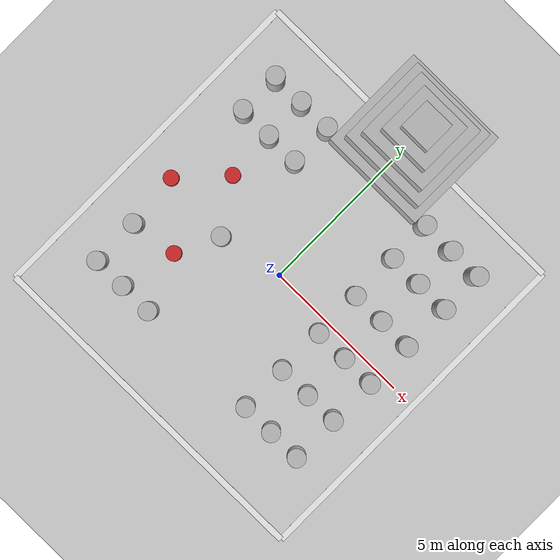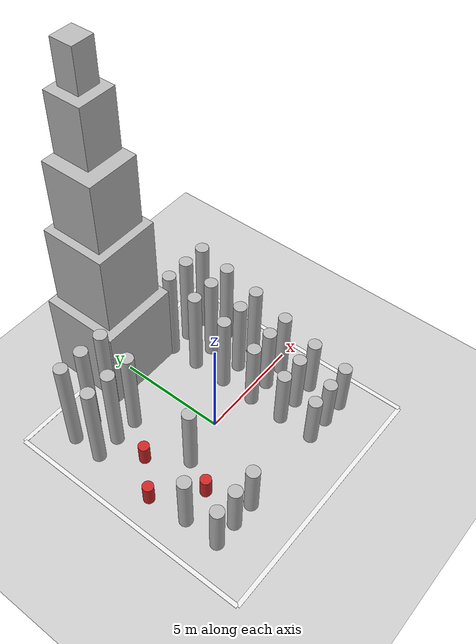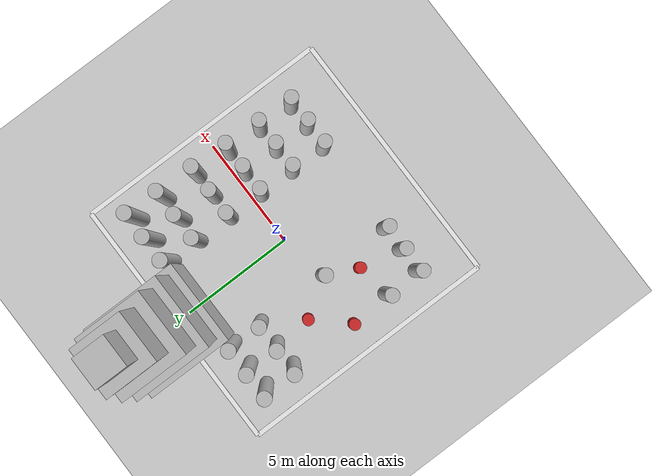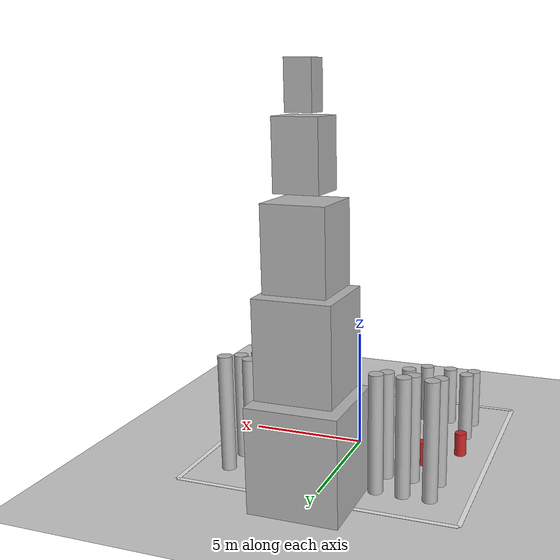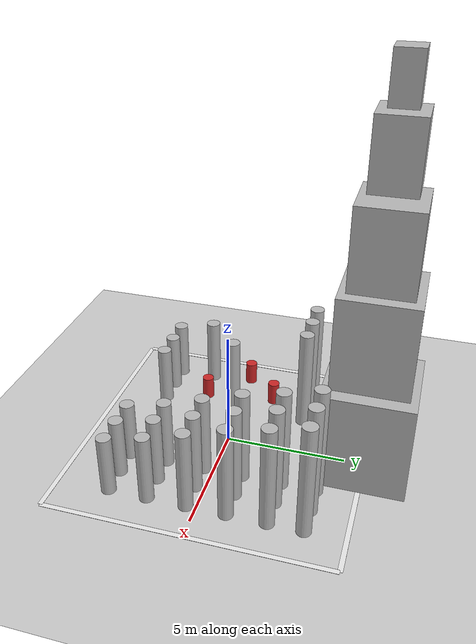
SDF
<?xml version="1.0"?>
<!-- Tour Hassan Rabat — hassan PNG textures (video / screenshot) -->
<sdf version="1.6">
  <world name="hassan_rabat">

  <physics type="ode">
    <max_step_size>0.01</max_step_size>
    <real_time_factor>1</real_time_factor>
    <real_time_update_rate>100</real_time_update_rate>
    <ode>
      <solver><type>quick</type><iters>50</iters><sor>1.3</sor></solver>
      <constraints><cfm>0</cfm><erp>0.2</erp>
        <contact_max_correcting_vel>100</contact_max_correcting_vel>
        <contact_surface_layer>0.001</contact_surface_layer>
      </constraints>
    </ode>
  </physics>

  <scene>
    <ambient>0.85 0.85 0.82 1</ambient>
    <background>0.42 0.62 0.95 1</background>
    <shadows>false</shadows><grid>false</grid>
  </scene>
  <light type="directional" name="sun_warm">
    <cast_shadows>false</cast_shadows>
    <diffuse>1.0 0.95 0.85 1</diffuse>
    <direction>-0.35 0.15 -0.92</direction>
  </light>
  <light type="directional" name="sky_fill">
    <cast_shadows>false</cast_shadows>
    <diffuse>0.25 0.35 0.55 1</diffuse>
    <direction>0.1 -0.05 -1.0</direction>
  </light>

  <model name="hassan_floor"><static>true</static><pose>0 0 0 0 0 0</pose><link name="link"><collision name="c"><geometry><plane><normal>0 0 1</normal><size>22 22</size></plane></geometry><surface><friction><ode><mu>0.65</mu><mu2>0.65</mu2></ode></friction></surface></collision><visual name="v"><geometry><plane><normal>0 0 1</normal><size>22 22</size></plane></geometry>
          <material><script><uri>file:///home/anon/ros2_ws/src/safe_drl_nav/safe_drl_nav/sim_assets/materials/scripts</uri><name>Hassan/Floor</name></script></material>
</visual></link></model>

  <model name="bound_n"><static>true</static><pose>0 5.8 0.01 0 0 0</pose><link name="link"><collision name="c"><geometry><box><size>11.6 0.2 0.2</size></box></geometry></collision><visual name="v"><geometry><box><size>11.6 0.2 0.01</size></box></geometry>
          <material><script><uri>file://media/materials/scripts/gazebo.material</uri><name>Gazebo/White</name></script></material>
</visual></link></model>

  <model name="bound_s"><static>true</static><pose>0 -5.8 0.01 0 0 0</pose><link name="link"><collision name="c"><geometry><box><size>11.6 0.2 0.2</size></box></geometry></collision><visual name="v"><geometry><box><size>11.6 0.2 0.01</size></box></geometry>
          <material><script><uri>file://media/materials/scripts/gazebo.material</uri><name>Gazebo/White</name></script></material>
</visual></link></model>

  <model name="bound_e"><static>true</static><pose>5.8 0 0.01 0 0 0</pose><link name="link"><collision name="c"><geometry><box><size>0.2 11.6 0.2</size></box></geometry></collision><visual name="v"><geometry><box><size>0.2 11.6 0.01</size></box></geometry>
          <material><script><uri>file://media/materials/scripts/gazebo.material</uri><name>Gazebo/White</name></script></material>
</visual></link></model>

  <model name="bound_w"><static>true</static><pose>-5.8 0 0.01 0 0 0</pose><link name="link"><collision name="c"><geometry><box><size>0.2 11.6 0.2</size></box></geometry></collision><visual name="v"><geometry><box><size>0.2 11.6 0.01</size></box></geometry>
          <material><script><uri>file://media/materials/scripts/gazebo.material</uri><name>Gazebo/White</name></script></material>
</visual></link></model>

  <model name="hassan_mosque"><static>true</static><pose>0 5.8 0 0 0 0</pose><link name="link"><collision name="c"><pose>0 0 8.0 0 0 0</pose><geometry><box><size>3.6 3.6 16</size></box></geometry></collision>
        <visual name="tier_0"><pose>0 0 2.2 0 0 0</pose><geometry><box><size>3.6 3.6 4.2</size></box></geometry>
          <material><script><uri>file:///home/anon/ros2_ws/src/safe_drl_nav/safe_drl_nav/sim_assets/materials/scripts</uri><name>Hassan/Tower</name></script></material>
</visual>
        <visual name="tier_1"><pose>0 0 6.4 0 0 0</pose><geometry><box><size>3.0 3.0 3.8</size></box></geometry>
          <material><script><uri>file:///home/anon/ros2_ws/src/safe_drl_nav/safe_drl_nav/sim_assets/materials/scripts</uri><name>Hassan/Tower</name></script></material>
</visual>
        <visual name="tier_2"><pose>0 0 10.0 0 0 0</pose><geometry><box><size>2.4 2.4 3.2</size></box></geometry>
          <material><script><uri>file:///home/anon/ros2_ws/src/safe_drl_nav/safe_drl_nav/sim_assets/materials/scripts</uri><name>Hassan/Tower</name></script></material>
</visual>
        <visual name="tier_3"><pose>0 0 13.2 0 0 0</pose><geometry><box><size>1.7 1.7 2.6</size></box></geometry>
          <material><script><uri>file:///home/anon/ros2_ws/src/safe_drl_nav/safe_drl_nav/sim_assets/materials/scripts</uri><name>Hassan/Tower</name></script></material>
</visual>
        <visual name="tier_4"><pose>0 0 15.5 0 0 0</pose><geometry><box><size>1.0 1.0 1.8</size></box></geometry>
          <material><script><uri>file:///home/anon/ros2_ws/src/safe_drl_nav/safe_drl_nav/sim_assets/materials/scripts</uri><name>Hassan/Tower</name></script></material>
</visual>
</link></model>

  <model name="p_0"><static>true</static><pose>-4.3 -3.6 1.3 0 0 0</pose><link name="link"><collision name="c"><geometry><cylinder><radius>0.3</radius><length>2.6</length></cylinder></geometry></collision><visual name="v"><geometry><cylinder><radius>0.3</radius><length>2.6</length></cylinder></geometry>
          <material><script><uri>file:///home/anon/ros2_ws/src/safe_drl_nav/safe_drl_nav/sim_assets/materials/scripts</uri><name>Hassan/Pillar</name></script></material>
</visual></link></model>

  <model name="p_1"><static>true</static><pose>-3.2 -3.6 1.3 0 0 0</pose><link name="link"><collision name="c"><geometry><cylinder><radius>0.3</radius><length>2.6</length></cylinder></geometry></collision><visual name="v"><geometry><cylinder><radius>0.3</radius><length>2.6</length></cylinder></geometry>
          <material><script><uri>file:///home/anon/ros2_ws/src/safe_drl_nav/safe_drl_nav/sim_assets/materials/scripts</uri><name>Hassan/Pillar</name></script></material>
</visual></link></model>

  <model name="p_2"><static>true</static><pose>-2.1 -3.6 1.3 0 0 0</pose><link name="link"><collision name="c"><geometry><cylinder><radius>0.3</radius><length>2.6</length></cylinder></geometry></collision><visual name="v"><geometry><cylinder><radius>0.3</radius><length>2.6</length></cylinder></geometry>
          <material><script><uri>file:///home/anon/ros2_ws/src/safe_drl_nav/safe_drl_nav/sim_assets/materials/scripts</uri><name>Hassan/Pillar</name></script></material>
</visual></link></model>

  <model name="p_3"><static>true</static><pose>2.1 -3.6 1.3 0 0 0</pose><link name="link"><collision name="c"><geometry><cylinder><radius>0.3</radius><length>2.6</length></cylinder></geometry></collision><visual name="v"><geometry><cylinder><radius>0.3</radius><length>2.6</length></cylinder></geometry>
          <material><script><uri>file:///home/anon/ros2_ws/src/safe_drl_nav/safe_drl_nav/sim_assets/materials/scripts</uri><name>Hassan/Pillar</name></script></material>
</visual></link></model>

  <model name="p_4"><static>true</static><pose>3.2 -3.6 1.3 0 0 0</pose><link name="link"><collision name="c"><geometry><cylinder><radius>0.3</radius><length>2.6</length></cylinder></geometry></collision><visual name="v"><geometry><cylinder><radius>0.3</radius><length>2.6</length></cylinder></geometry>
          <material><script><uri>file:///home/anon/ros2_ws/src/safe_drl_nav/safe_drl_nav/sim_assets/materials/scripts</uri><name>Hassan/Pillar</name></script></material>
</visual></link></model>

  <model name="p_5"><static>true</static><pose>4.3 -3.6 1.3 0 0 0</pose><link name="link"><collision name="c"><geometry><cylinder><radius>0.3</radius><length>2.6</length></cylinder></geometry></collision><visual name="v"><geometry><cylinder><radius>0.3</radius><length>2.6</length></cylinder></geometry>
          <material><script><uri>file:///home/anon/ros2_ws/src/safe_drl_nav/safe_drl_nav/sim_assets/materials/scripts</uri><name>Hassan/Pillar</name></script></material>
</visual></link></model>

  <model name="p_6"><static>true</static><pose>-4.3 -2.0 1.5 0 0 0</pose><link name="link"><collision name="c"><geometry><cylinder><radius>0.3</radius><length>3.0</length></cylinder></geometry></collision><visual name="v"><geometry><cylinder><radius>0.3</radius><length>3.0</length></cylinder></geometry>
          <material><script><uri>file:///home/anon/ros2_ws/src/safe_drl_nav/safe_drl_nav/sim_assets/materials/scripts</uri><name>Hassan/Pillar</name></script></material>
</visual></link></model>

  <model name="p_7"><static>true</static><pose>2.1 -2.0 1.5 0 0 0</pose><link name="link"><collision name="c"><geometry><cylinder><radius>0.3</radius><length>3.0</length></cylinder></geometry></collision><visual name="v"><geometry><cylinder><radius>0.3</radius><length>3.0</length></cylinder></geometry>
          <material><script><uri>file:///home/anon/ros2_ws/src/safe_drl_nav/safe_drl_nav/sim_assets/materials/scripts</uri><name>Hassan/Pillar</name></script></material>
</visual></link></model>

  <model name="p_8"><static>true</static><pose>3.2 -2.0 1.5 0 0 0</pose><link name="link"><collision name="c"><geometry><cylinder><radius>0.3</radius><length>3.0</length></cylinder></geometry></collision><visual name="v"><geometry><cylinder><radius>0.3</radius><length>3.0</length></cylinder></geometry>
          <material><script><uri>file:///home/anon/ros2_ws/src/safe_drl_nav/safe_drl_nav/sim_assets/materials/scripts</uri><name>Hassan/Pillar</name></script></material>
</visual></link></model>

  <model name="p_9"><static>true</static><pose>4.3 -2.0 1.5 0 0 0</pose><link name="link"><collision name="c"><geometry><cylinder><radius>0.3</radius><length>3.0</length></cylinder></geometry></collision><visual name="v"><geometry><cylinder><radius>0.3</radius><length>3.0</length></cylinder></geometry>
          <material><script><uri>file:///home/anon/ros2_ws/src/safe_drl_nav/safe_drl_nav/sim_assets/materials/scripts</uri><name>Hassan/Pillar</name></script></material>
</visual></link></model>

  <model name="p_10"><static>true</static><pose>-2.1 -0.4 1.77 0 0 0</pose><link name="link"><collision name="c"><geometry><cylinder><radius>0.3</radius><length>3.55</length></cylinder></geometry></collision><visual name="v"><geometry><cylinder><radius>0.3</radius><length>3.55</length></cylinder></geometry>
          <material><script><uri>file:///home/anon/ros2_ws/src/safe_drl_nav/safe_drl_nav/sim_assets/materials/scripts</uri><name>Hassan/Pillar</name></script></material>
</visual></link></model>

  <model name="p_11"><static>true</static><pose>2.1 -0.4 1.77 0 0 0</pose><link name="link"><collision name="c"><geometry><cylinder><radius>0.3</radius><length>3.55</length></cylinder></geometry></collision><visual name="v"><geometry><cylinder><radius>0.3</radius><length>3.55</length></cylinder></geometry>
          <material><script><uri>file:///home/anon/ros2_ws/src/safe_drl_nav/safe_drl_nav/sim_assets/materials/scripts</uri><name>Hassan/Pillar</name></script></material>
</visual></link></model>

  <model name="p_12"><static>true</static><pose>3.2 -0.4 1.77 0 0 0</pose><link name="link"><collision name="c"><geometry><cylinder><radius>0.3</radius><length>3.55</length></cylinder></geometry></collision><visual name="v"><geometry><cylinder><radius>0.3</radius><length>3.55</length></cylinder></geometry>
          <material><script><uri>file:///home/anon/ros2_ws/src/safe_drl_nav/safe_drl_nav/sim_assets/materials/scripts</uri><name>Hassan/Pillar</name></script></material>
</visual></link></model>

  <model name="p_13"><static>true</static><pose>4.3 -0.4 1.77 0 0 0</pose><link name="link"><collision name="c"><geometry><cylinder><radius>0.3</radius><length>3.55</length></cylinder></geometry></collision><visual name="v"><geometry><cylinder><radius>0.3</radius><length>3.55</length></cylinder></geometry>
          <material><script><uri>file:///home/anon/ros2_ws/src/safe_drl_nav/safe_drl_nav/sim_assets/materials/scripts</uri><name>Hassan/Pillar</name></script></material>
</visual></link></model>

  <model name="p_14"><static>true</static><pose>2.1 1.2 2.05 0 0 0</pose><link name="link"><collision name="c"><geometry><cylinder><radius>0.3</radius><length>4.1</length></cylinder></geometry></collision><visual name="v"><geometry><cylinder><radius>0.3</radius><length>4.1</length></cylinder></geometry>
          <material><script><uri>file:///home/anon/ros2_ws/src/safe_drl_nav/safe_drl_nav/sim_assets/materials/scripts</uri><name>Hassan/Pillar</name></script></material>
</visual></link></model>

  <model name="p_15"><static>true</static><pose>3.2 1.2 2.05 0 0 0</pose><link name="link"><collision name="c"><geometry><cylinder><radius>0.3</radius><length>4.1</length></cylinder></geometry></collision><visual name="v"><geometry><cylinder><radius>0.3</radius><length>4.1</length></cylinder></geometry>
          <material><script><uri>file:///home/anon/ros2_ws/src/safe_drl_nav/safe_drl_nav/sim_assets/materials/scripts</uri><name>Hassan/Pillar</name></script></material>
</visual></link></model>

  <model name="p_16"><static>true</static><pose>4.3 1.2 2.05 0 0 0</pose><link name="link"><collision name="c"><geometry><cylinder><radius>0.3</radius><length>4.1</length></cylinder></geometry></collision><visual name="v"><geometry><cylinder><radius>0.3</radius><length>4.1</length></cylinder></geometry>
          <material><script><uri>file:///home/anon/ros2_ws/src/safe_drl_nav/safe_drl_nav/sim_assets/materials/scripts</uri><name>Hassan/Pillar</name></script></material>
</visual></link></model>

  <model name="p_17"><static>true</static><pose>-4.3 2.8 2.25 0 0 0</pose><link name="link"><collision name="c"><geometry><cylinder><radius>0.3</radius><length>4.5</length></cylinder></geometry></collision><visual name="v"><geometry><cylinder><radius>0.3</radius><length>4.5</length></cylinder></geometry>
          <material><script><uri>file:///home/anon/ros2_ws/src/safe_drl_nav/safe_drl_nav/sim_assets/materials/scripts</uri><name>Hassan/Pillar</name></script></material>
</visual></link></model>

  <model name="p_18"><static>true</static><pose>-3.2 2.8 2.25 0 0 0</pose><link name="link"><collision name="c"><geometry><cylinder><radius>0.3</radius><length>4.5</length></cylinder></geometry></collision><visual name="v"><geometry><cylinder><radius>0.3</radius><length>4.5</length></cylinder></geometry>
          <material><script><uri>file:///home/anon/ros2_ws/src/safe_drl_nav/safe_drl_nav/sim_assets/materials/scripts</uri><name>Hassan/Pillar</name></script></material>
</visual></link></model>

  <model name="p_19"><static>true</static><pose>-2.1 2.8 2.25 0 0 0</pose><link name="link"><collision name="c"><geometry><cylinder><radius>0.3</radius><length>4.5</length></cylinder></geometry></collision><visual name="v"><geometry><cylinder><radius>0.3</radius><length>4.5</length></cylinder></geometry>
          <material><script><uri>file:///home/anon/ros2_ws/src/safe_drl_nav/safe_drl_nav/sim_assets/materials/scripts</uri><name>Hassan/Pillar</name></script></material>
</visual></link></model>

  <model name="p_20"><static>true</static><pose>2.1 2.8 2.25 0 0 0</pose><link name="link"><collision name="c"><geometry><cylinder><radius>0.3</radius><length>4.5</length></cylinder></geometry></collision><visual name="v"><geometry><cylinder><radius>0.3</radius><length>4.5</length></cylinder></geometry>
          <material><script><uri>file:///home/anon/ros2_ws/src/safe_drl_nav/safe_drl_nav/sim_assets/materials/scripts</uri><name>Hassan/Pillar</name></script></material>
</visual></link></model>

  <model name="p_21"><static>true</static><pose>3.2 2.8 2.25 0 0 0</pose><link name="link"><collision name="c"><geometry><cylinder><radius>0.3</radius><length>4.5</length></cylinder></geometry></collision><visual name="v"><geometry><cylinder><radius>0.3</radius><length>4.5</length></cylinder></geometry>
          <material><script><uri>file:///home/anon/ros2_ws/src/safe_drl_nav/safe_drl_nav/sim_assets/materials/scripts</uri><name>Hassan/Pillar</name></script></material>
</visual></link></model>

  <model name="p_22"><static>true</static><pose>4.3 2.8 2.25 0 0 0</pose><link name="link"><collision name="c"><geometry><cylinder><radius>0.3</radius><length>4.5</length></cylinder></geometry></collision><visual name="v"><geometry><cylinder><radius>0.3</radius><length>4.5</length></cylinder></geometry>
          <material><script><uri>file:///home/anon/ros2_ws/src/safe_drl_nav/safe_drl_nav/sim_assets/materials/scripts</uri><name>Hassan/Pillar</name></script></material>
</visual></link></model>

  <model name="p_23"><static>true</static><pose>-4.3 4.2 2.45 0 0 0</pose><link name="link"><collision name="c"><geometry><cylinder><radius>0.3</radius><length>4.9</length></cylinder></geometry></collision><visual name="v"><geometry><cylinder><radius>0.3</radius><length>4.9</length></cylinder></geometry>
          <material><script><uri>file:///home/anon/ros2_ws/src/safe_drl_nav/safe_drl_nav/sim_assets/materials/scripts</uri><name>Hassan/Pillar</name></script></material>
</visual></link></model>

  <model name="p_24"><static>true</static><pose>-3.2 4.2 2.45 0 0 0</pose><link name="link"><collision name="c"><geometry><cylinder><radius>0.3</radius><length>4.9</length></cylinder></geometry></collision><visual name="v"><geometry><cylinder><radius>0.3</radius><length>4.9</length></cylinder></geometry>
          <material><script><uri>file:///home/anon/ros2_ws/src/safe_drl_nav/safe_drl_nav/sim_assets/materials/scripts</uri><name>Hassan/Pillar</name></script></material>
</visual></link></model>

  <model name="p_25"><static>true</static><pose>-2.1 4.2 2.45 0 0 0</pose><link name="link"><collision name="c"><geometry><cylinder><radius>0.3</radius><length>4.9</length></cylinder></geometry></collision><visual name="v"><geometry><cylinder><radius>0.3</radius><length>4.9</length></cylinder></geometry>
          <material><script><uri>file:///home/anon/ros2_ws/src/safe_drl_nav/safe_drl_nav/sim_assets/materials/scripts</uri><name>Hassan/Pillar</name></script></material>
</visual></link></model>

  <model name="p_26"><static>true</static><pose>2.1 4.2 2.45 0 0 0</pose><link name="link"><collision name="c"><geometry><cylinder><radius>0.3</radius><length>4.9</length></cylinder></geometry></collision><visual name="v"><geometry><cylinder><radius>0.3</radius><length>4.9</length></cylinder></geometry>
          <material><script><uri>file:///home/anon/ros2_ws/src/safe_drl_nav/safe_drl_nav/sim_assets/materials/scripts</uri><name>Hassan/Pillar</name></script></material>
</visual></link></model>

  <model name="p_27"><static>true</static><pose>3.2 4.2 2.45 0 0 0</pose><link name="link"><collision name="c"><geometry><cylinder><radius>0.3</radius><length>4.9</length></cylinder></geometry></collision><visual name="v"><geometry><cylinder><radius>0.3</radius><length>4.9</length></cylinder></geometry>
          <material><script><uri>file:///home/anon/ros2_ws/src/safe_drl_nav/safe_drl_nav/sim_assets/materials/scripts</uri><name>Hassan/Pillar</name></script></material>
</visual></link></model>

  <model name="p_28"><static>true</static><pose>4.3 4.2 2.45 0 0 0</pose><link name="link"><collision name="c"><geometry><cylinder><radius>0.3</radius><length>4.9</length></cylinder></geometry></collision><visual name="v"><geometry><cylinder><radius>0.3</radius><length>4.9</length></cylinder></geometry>
          <material><script><uri>file:///home/anon/ros2_ws/src/safe_drl_nav/safe_drl_nav/sim_assets/materials/scripts</uri><name>Hassan/Pillar</name></script></material>
</visual></link></model>

  <model name="wp1"><static>true</static><pose>-2.8 -1.8 0.5 0 0 0</pose><link name="link"><collision name="c"><geometry><cylinder><radius>0.25</radius><length>1.0</length></cylinder></geometry></collision><visual name="v"><geometry><cylinder><radius>0.25</radius><length>1.0</length></cylinder></geometry>
          <material><script><uri>file://media/materials/scripts/gazebo.material</uri><name>Gazebo/Red</name></script></material>
</visual></link></model>

  <model name="wp2"><static>true</static><pose>-4.5 -0.2 0.5 0 0 0</pose><link name="link"><collision name="c"><geometry><cylinder><radius>0.25</radius><length>1.0</length></cylinder></geometry></collision><visual name="v"><geometry><cylinder><radius>0.25</radius><length>1.0</length></cylinder></geometry>
          <material><script><uri>file://media/materials/scripts/gazebo.material</uri><name>Gazebo/Red</name></script></material>
</visual></link></model>

  <model name="wp3"><static>true</static><pose>-3.2 1.2 0.5 0 0 0</pose><link name="link"><collision name="c"><geometry><cylinder><radius>0.25</radius><length>1.0</length></cylinder></geometry></collision><visual name="v"><geometry><cylinder><radius>0.25</radius><length>1.0</length></cylinder></geometry>
          <material><script><uri>file://media/materials/scripts/gazebo.material</uri><name>Gazebo/Red</name></script></material>
</visual></link></model>

  </world>
</sdf>
